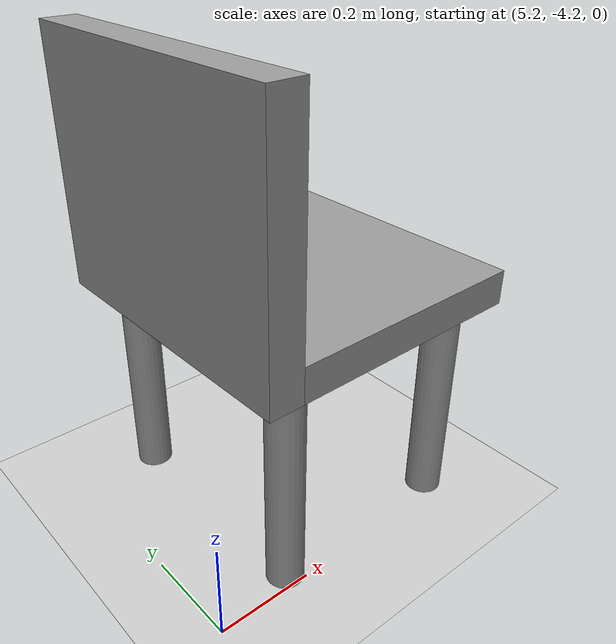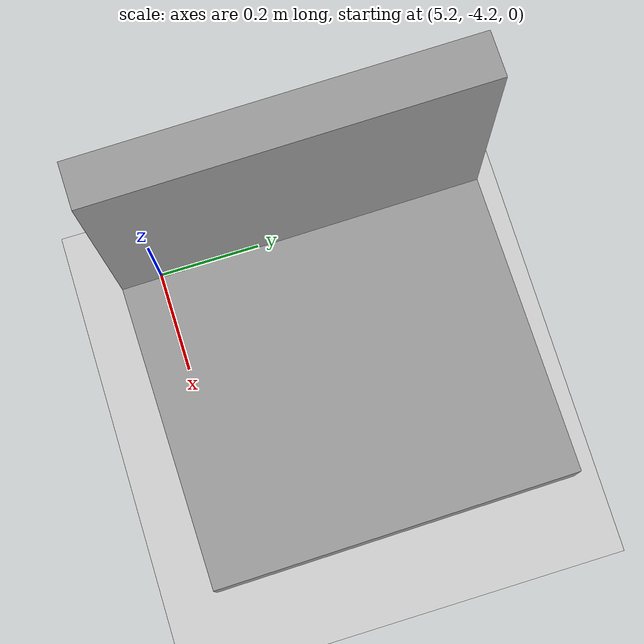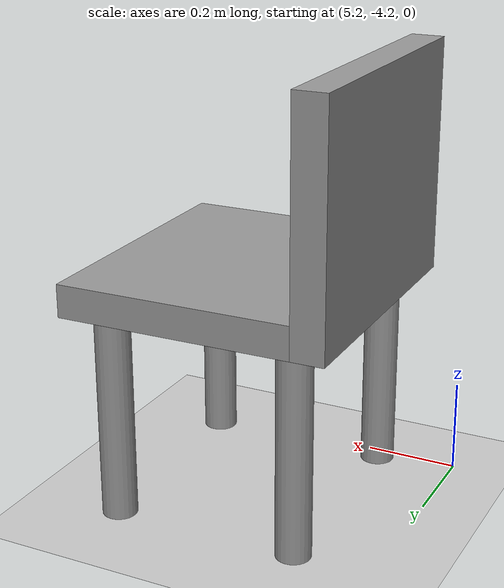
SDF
<sdf version="1.6">
 <world name="default">
  <model name="ground_plane">
   <static>1</static>
   <link name="link">
    <collision name="collision">
     <geometry><plane><normal>0 0 1</normal><size>100 100</size></plane></geometry>
     <surface>
      <contact><collide_bitmask>65535</collide_bitmask></contact>
      <friction><ode><mu>100</mu><mu2>50</mu2></ode></friction>
     </surface>
    </collision>
    <visual name="visual">
     <cast_shadows>0</cast_shadows>
     <geometry><plane><normal>0 0 1</normal><size>100 100</size></plane></geometry>
     <material>
      <script><uri>file://media/materials/scripts/gazebo.material</uri><name>Gazebo/Grey</name></script>
     </material>
    </visual>
   </link>
  </model>
  <model name="chair_6">
   <link name="link_0">
    <inertial>
     <mass>1</mass>
     <inertia>
      <ixx>0.166667</ixx>
      <ixy>0</ixy>
      <ixz>0</ixz>
      <iyy>0.166667</iyy>
      <iyz>0</iyz>
      <izz>0.166667</izz>
     </inertia>
    </inertial>
    <pose>-0.067504 0 0.137499 0 -0 0</pose>
    <visual name="visual">
     <geometry><box><size>0.5 0.6 0.07</size></box></geometry>
     <material>
      <lighting>1</lighting>
      <script><uri>file://media/materials/scripts/gazebo.material</uri><name>Gazebo/Grey</name></script>
      <shader type="pixel"><normal_map>__default__</normal_map></shader>
      <ambient>0.3 0.3 0.3 1</ambient>
      <diffuse>0.7 0.7 0.7 1</diffuse>
      <specular>0.01 0.01 0.01 1</specular>
      <emissive>0 0 0 1</emissive>
     </material>
    </visual>
    <collision name="collision">
     <geometry><box><size>0.5 0.6 0.07</size></box></geometry>
     <surface>
      <friction>
       <ode><mu>1</mu><mu2>1</mu2><fdir1>0 0 0</fdir1><slip1>0</slip1><slip2>0</slip2></ode>
       <torsional>
        <coefficient>1</coefficient>
        <patch_radius>0</patch_radius>
        <surface_radius>0</surface_radius>
        <use_patch_radius>1</use_patch_radius>
        <ode><slip>0</slip></ode>
       </torsional>
      </friction>
      <bounce><restitution_coefficient>0</restitution_coefficient><threshold>1e+06</threshold></bounce>
      <contact>
       <collide_without_contact>0</collide_without_contact>
       <collide_without_contact_bitmask>1</collide_without_contact_bitmask>
       <collide_bitmask>1</collide_bitmask>
       <ode>
        <soft_cfm>0</soft_cfm>
        <soft_erp>0.2</soft_erp>
        <kp>1e+13</kp>
        <kd>1</kd>
        <max_vel>0.01</max_vel>
        <min_depth>0</min_depth>
       </ode>
       <bullet>
        <split_impulse>1</split_impulse>
        <split_impulse_penetration_threshold>-0.01</split_impulse_penetration_threshold>
        <soft_cfm>0</soft_cfm>
        <soft_erp>0.2</soft_erp>
        <kp>1e+13</kp>
        <kd>1</kd>
       </bullet>
      </contact>
     </surface>
    </collision>
   </link>
   <link name="link_0_clone">
    <inertial>
     <mass>1</mass>
     <inertia>
      <ixx>0.166667</ixx>
      <ixy>0</ixy>
      <ixz>0</ixz>
      <iyy>0.166667</iyy>
      <iyz>0</iyz>
      <izz>0.166667</izz>
     </inertia>
    </inertial>
    <pose>0.21752 0 0.352503 0 1.5707 0</pose>
    <visual name="visual">
     <geometry><box><size>0.5 0.6 0.07</size></box></geometry>
     <material>
      <lighting>1</lighting>
      <script><uri>file://media/materials/scripts/gazebo.material</uri><name>Gazebo/Grey</name></script>
      <shader type="pixel"><normal_map>__default__</normal_map></shader>
      <ambient>0.3 0.3 0.3 1</ambient>
      <diffuse>0.7 0.7 0.7 1</diffuse>
      <specular>0.01 0.01 0.01 1</specular>
      <emissive>0 0 0 1</emissive>
     </material>
    </visual>
    <collision name="collision">
     <geometry><box><size>0.5 0.6 0.07</size></box></geometry>
     <surface>
      <friction>
       <ode><mu>1</mu><mu2>1</mu2><fdir1>0 0 0</fdir1><slip1>0</slip1><slip2>0</slip2></ode>
       <torsional>
        <coefficient>1</coefficient>
        <patch_radius>0</patch_radius>
        <surface_radius>0</surface_radius>
        <use_patch_radius>1</use_patch_radius>
        <ode><slip>0</slip></ode>
       </torsional>
      </friction>
      <bounce><restitution_coefficient>0</restitution_coefficient><threshold>1e+06</threshold></bounce>
      <contact>
       <collide_without_contact>0</collide_without_contact>
       <collide_without_contact_bitmask>1</collide_without_contact_bitmask>
       <collide_bitmask>1</collide_bitmask>
       <ode>
        <soft_cfm>0</soft_cfm>
        <soft_erp>0.2</soft_erp>
        <kp>1e+13</kp>
        <kd>1</kd>
        <max_vel>0.01</max_vel>
        <min_depth>0</min_depth>
       </ode>
       <bullet>
        <split_impulse>1</split_impulse>
        <split_impulse_penetration_threshold>-0.01</split_impulse_penetration_threshold>
        <soft_cfm>0</soft_cfm>
        <soft_erp>0.2</soft_erp>
        <kp>1e+13</kp>
        <kd>1</kd>
       </bullet>
      </contact>
     </surface>
    </collision>
   </link>
   <link name="link_1">
    <inertial>
     <mass>1</mass>
     <inertia><ixx>0.145833</ixx><ixy>0</ixy><ixz>0</ixz><iyy>0.145833</iyy><iyz>0</iyz><izz>0.125</izz></inertia>
    </inertial>
    <pose>-0.237504 -0.23 -0.122501 0 -0 0</pose>
    <visual name="visual">
     <geometry><cylinder><radius>0.037</radius><length>0.45</length></cylinder></geometry>
     <material>
      <lighting>1</lighting>
      <script><uri>file://media/materials/scripts/gazebo.material</uri><name>Gazebo/Grey</name></script>
      <shader type="pixel"><normal_map>__default__</normal_map></shader>
      <ambient>0.3 0.3 0.3 1</ambient>
      <diffuse>0.7 0.7 0.7 1</diffuse>
      <specular>0.01 0.01 0.01 1</specular>
      <emissive>0 0 0 1</emissive>
     </material>
    </visual>
    <collision name="collision">
     <geometry><cylinder><radius>0.037</radius><length>0.45</length></cylinder></geometry>
     <surface>
      <friction>
       <ode><mu>1</mu><mu2>1</mu2><fdir1>0 0 0</fdir1><slip1>0</slip1><slip2>0</slip2></ode>
       <torsional>
        <coefficient>1</coefficient>
        <patch_radius>0</patch_radius>
        <surface_radius>0</surface_radius>
        <use_patch_radius>1</use_patch_radius>
        <ode><slip>0</slip></ode>
       </torsional>
      </friction>
      <bounce><restitution_coefficient>0</restitution_coefficient><threshold>1e+06</threshold></bounce>
      <contact>
       <collide_without_contact>0</collide_without_contact>
       <collide_without_contact_bitmask>1</collide_without_contact_bitmask>
       <collide_bitmask>1</collide_bitmask>
       <ode>
        <soft_cfm>0</soft_cfm>
        <soft_erp>0.2</soft_erp>
        <kp>1e+13</kp>
        <kd>1</kd>
        <max_vel>0.01</max_vel>
        <min_depth>0</min_depth>
       </ode>
       <bullet>
        <split_impulse>1</split_impulse>
        <split_impulse_penetration_threshold>-0.01</split_impulse_penetration_threshold>
        <soft_cfm>0</soft_cfm>
        <soft_erp>0.2</soft_erp>
        <kp>1e+13</kp>
        <kd>1</kd>
       </bullet>
      </contact>
     </surface>
    </collision>
   </link>
   <link name="link_1_clone">
    <inertial>
     <mass>1</mass>
     <inertia><ixx>0.145833</ixx><ixy>0</ixy><ixz>0</ixz><iyy>0.145833</iyy><iyz>0</iyz><izz>0.125</izz></inertia>
    </inertial>
    <pose>-0.237504 0.23 -0.122501 0 -0 0</pose>
    <visual name="visual">
     <geometry><cylinder><radius>0.037</radius><length>0.45</length></cylinder></geometry>
     <material>
      <lighting>1</lighting>
      <script><uri>file://media/materials/scripts/gazebo.material</uri><name>Gazebo/Grey</name></script>
      <shader type="pixel"><normal_map>__default__</normal_map></shader>
      <ambient>0.3 0.3 0.3 1</ambient>
      <diffuse>0.7 0.7 0.7 1</diffuse>
      <specular>0.01 0.01 0.01 1</specular>
      <emissive>0 0 0 1</emissive>
     </material>
    </visual>
    <collision name="collision">
     <geometry><cylinder><radius>0.037</radius><length>0.45</length></cylinder></geometry>
     <surface>
      <friction>
       <ode><mu>1</mu><mu2>1</mu2><fdir1>0 0 0</fdir1><slip1>0</slip1><slip2>0</slip2></ode>
       <torsional>
        <coefficient>1</coefficient>
        <patch_radius>0</patch_radius>
        <surface_radius>0</surface_radius>
        <use_patch_radius>1</use_patch_radius>
        <ode><slip>0</slip></ode>
       </torsional>
      </friction>
      <bounce><restitution_coefficient>0</restitution_coefficient><threshold>1e+06</threshold></bounce>
      <contact>
       <collide_without_contact>0</collide_without_contact>
       <collide_without_contact_bitmask>1</collide_without_contact_bitmask>
       <collide_bitmask>1</collide_bitmask>
       <ode>
        <soft_cfm>0</soft_cfm>
        <soft_erp>0.2</soft_erp>
        <kp>1e+13</kp>
        <kd>1</kd>
        <max_vel>0.01</max_vel>
        <min_depth>0</min_depth>
       </ode>
       <bullet>
        <split_impulse>1</split_impulse>
        <split_impulse_penetration_threshold>-0.01</split_impulse_penetration_threshold>
        <soft_cfm>0</soft_cfm>
        <soft_erp>0.2</soft_erp>
        <kp>1e+13</kp>
        <kd>1</kd>
       </bullet>
      </contact>
     </surface>
    </collision>
   </link>
   <link name="link_1_clone_0">
    <inertial>
     <mass>1</mass>
     <inertia><ixx>0.145833</ixx><ixy>0</ixy><ixz>0</ixz><iyy>0.145833</iyy><iyz>0</iyz><izz>0.125</izz></inertia>
    </inertial>
    <pose>0.162496 0.23 -0.122501 0 -0 0</pose>
    <visual name="visual">
     <geometry><cylinder><radius>0.037</radius><length>0.45</length></cylinder></geometry>
     <material>
      <lighting>1</lighting>
      <script><uri>file://media/materials/scripts/gazebo.material</uri><name>Gazebo/Grey</name></script>
      <shader type="pixel"><normal_map>__default__</normal_map></shader>
      <ambient>0.3 0.3 0.3 1</ambient>
      <diffuse>0.7 0.7 0.7 1</diffuse>
      <specular>0.01 0.01 0.01 1</specular>
      <emissive>0 0 0 1</emissive>
     </material>
    </visual>
    <collision name="collision">
     <geometry><cylinder><radius>0.037</radius><length>0.45</length></cylinder></geometry>
     <surface>
      <friction>
       <ode><mu>1</mu><mu2>1</mu2><fdir1>0 0 0</fdir1><slip1>0</slip1><slip2>0</slip2></ode>
       <torsional>
        <coefficient>1</coefficient>
        <patch_radius>0</patch_radius>
        <surface_radius>0</surface_radius>
        <use_patch_radius>1</use_patch_radius>
        <ode><slip>0</slip></ode>
       </torsional>
      </friction>
      <bounce><restitution_coefficient>0</restitution_coefficient><threshold>1e+06</threshold></bounce>
      <contact>
       <collide_without_contact>0</collide_without_contact>
       <collide_without_contact_bitmask>1</collide_without_contact_bitmask>
       <collide_bitmask>1</collide_bitmask>
       <ode>
        <soft_cfm>0</soft_cfm>
        <soft_erp>0.2</soft_erp>
        <kp>1e+13</kp>
        <kd>1</kd>
        <max_vel>0.01</max_vel>
        <min_depth>0</min_depth>
       </ode>
       <bullet>
        <split_impulse>1</split_impulse>
        <split_impulse_penetration_threshold>-0.01</split_impulse_penetration_threshold>
        <soft_cfm>0</soft_cfm>
        <soft_erp>0.2</soft_erp>
        <kp>1e+13</kp>
        <kd>1</kd>
       </bullet>
      </contact>
     </surface>
    </collision>
   </link>
   <link name="link_1_clone_1">
    <inertial>
     <mass>1</mass>
     <inertia><ixx>0.145833</ixx><ixy>0</ixy><ixz>0</ixz><iyy>0.145833</iyy><iyz>0</iyz><izz>0.125</izz></inertia>
    </inertial>
    <pose>0.162496 -0.23 -0.122501 0 -0 0</pose>
    <visual name="visual">
     <geometry><cylinder><radius>0.037</radius><length>0.45</length></cylinder></geometry>
     <material>
      <lighting>1</lighting>
      <script><uri>file://media/materials/scripts/gazebo.material</uri><name>Gazebo/Grey</name></script>
      <shader type="pixel"><normal_map>__default__</normal_map></shader>
      <ambient>0.3 0.3 0.3 1</ambient>
      <diffuse>0.7 0.7 0.7 1</diffuse>
      <specular>0.01 0.01 0.01 1</specular>
      <emissive>0 0 0 1</emissive>
     </material>
    </visual>
    <collision name="collision">
     <geometry><cylinder><radius>0.037</radius><length>0.45</length></cylinder></geometry>
     <surface>
      <friction>
       <ode><mu>1</mu><mu2>1</mu2><fdir1>0 0 0</fdir1><slip1>0</slip1><slip2>0</slip2></ode>
       <torsional>
        <coefficient>1</coefficient>
        <patch_radius>0</patch_radius>
        <surface_radius>0</surface_radius>
        <use_patch_radius>1</use_patch_radius>
        <ode><slip>0</slip></ode>
       </torsional>
      </friction>
      <bounce><restitution_coefficient>0</restitution_coefficient><threshold>1e+06</threshold></bounce>
      <contact>
       <collide_without_contact>0</collide_without_contact>
       <collide_without_contact_bitmask>1</collide_without_contact_bitmask>
       <collide_bitmask>1</collide_bitmask>
       <ode>
        <soft_cfm>0</soft_cfm>
        <soft_erp>0.2</soft_erp>
        <kp>1e+13</kp>
        <kd>1</kd>
        <max_vel>0.01</max_vel>
        <min_depth>0</min_depth>
       </ode>
       <bullet>
        <split_impulse>1</split_impulse>
        <split_impulse_penetration_threshold>-0.01</split_impulse_penetration_threshold>
        <soft_cfm>0</soft_cfm>
        <soft_erp>0.2</soft_erp>
        <kp>1e+13</kp>
        <kd>1</kd>
       </bullet>
      </contact>
     </surface>
    </collision>
   </link>
   <joint name="link_0_JOINT_0" type="fixed">
    <parent>link_0</parent>
    <child>link_0_clone</child>
    <physics>
     <ode><limit><cfm>0</cfm><erp>0.2</erp></limit><suspension><cfm>0</cfm><erp>0.2</erp></suspension></ode>
    </physics>
   </joint>
   <joint name="link_0_JOINT_1" type="fixed">
    <parent>link_0</parent>
    <child>link_1</child>
    <physics>
     <ode><limit><cfm>0</cfm><erp>0.2</erp></limit><suspension><cfm>0</cfm><erp>0.2</erp></suspension></ode>
    </physics>
   </joint>
   <joint name="link_0_JOINT_2" type="fixed">
    <parent>link_0</parent>
    <child>link_1_clone_0</child>
    <physics>
     <ode><limit><cfm>0</cfm><erp>0.2</erp></limit><suspension><cfm>0</cfm><erp>0.2</erp></suspension></ode>
    </physics>
   </joint>
   <joint name="link_0_JOINT_3" type="fixed">
    <parent>link_0</parent>
    <child>link_1_clone</child>
    <physics>
     <ode><limit><cfm>0</cfm><erp>0.2</erp></limit><suspension><cfm>0</cfm><erp>0.2</erp></suspension></ode>
    </physics>
   </joint>
   <joint name="link_0_JOINT_4" type="fixed">
    <parent>link_0</parent>
    <child>link_1_clone_1</child>
    <physics>
     <ode><limit><cfm>0</cfm><erp>0.2</erp></limit><suspension><cfm>0</cfm><erp>0.2</erp></suspension></ode>
    </physics>
   </joint>
   <static>0</static>
   <pose>5.53085 -3.93734 0.347501 0 0 -3.1284</pose>
  </model>
 </world>
</sdf>
